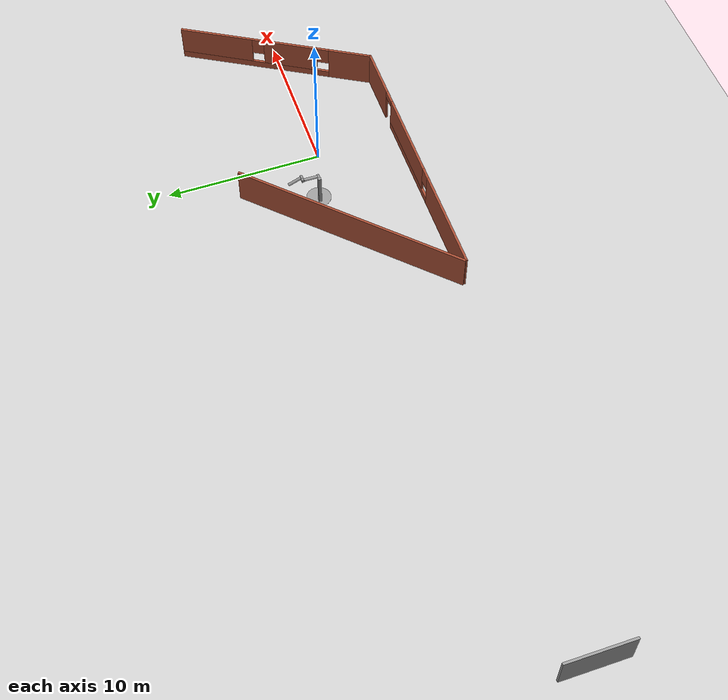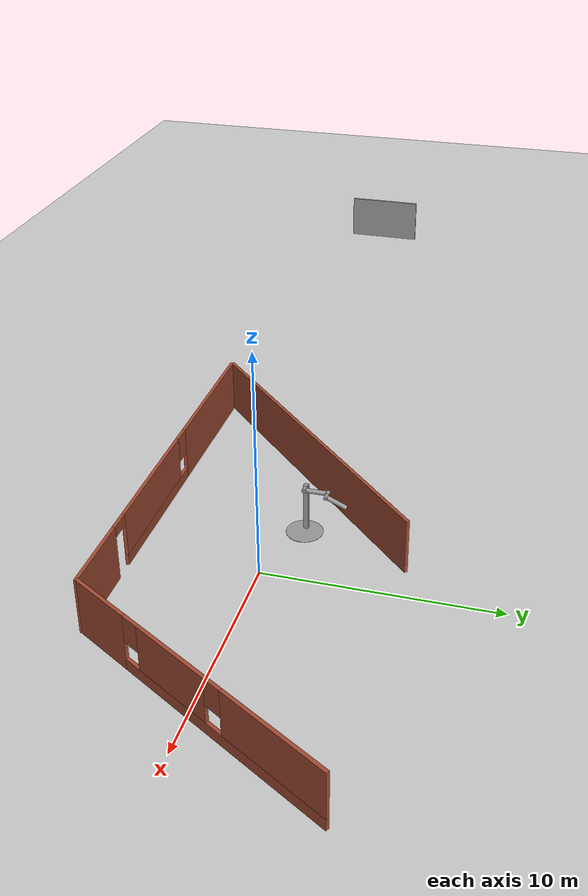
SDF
<sdf version="1.7">
 <world name="default">
  <light name="sun" type="directional">
   <pose>0 0 10 0 -0 0</pose>
   <diffuse>0.8 0.8 0.8 1</diffuse>
   <specular>0.2 0.2 0.2 1</specular>
   <attenuation>
    <range>1000</range>
    <constant>0.9</constant>
    <linear>0.01</linear>
    <quadratic>0.001</quadratic>
   </attenuation>
   <direction>-0.5 0.1 -0.9</direction>
   <spot><inner_angle>0</inner_angle><outer_angle>0</outer_angle><falloff>0</falloff></spot>
  </light>
  <model name="ground_plane">
   <static>1</static>
   <link name="link">
    <collision name="collision">
     <geometry><plane><normal>0 0 1</normal><size>100 100</size></plane></geometry>
     <surface>
      <contact><collide_bitmask>65535</collide_bitmask></contact>
      <friction><ode><mu>100</mu><mu2>50</mu2></ode></friction>
     </surface>
    </collision>
    <visual name="visual">
     <cast_shadows>0</cast_shadows>
     <geometry><plane><normal>0 0 1</normal><size>100 100</size></plane></geometry>
     <material>
      <script><uri>file://media/materials/scripts/gazebo.material</uri><name>Gazebo/Grey</name></script>
     </material>
    </visual>
   </link>
  </model>
  <gravity>0 0 -9.8</gravity>
  <magnetic_field>6e-06 2.3e-05 -4.2e-05</magnetic_field>
  <atmosphere type="adiabatic"/>
  <physics type="ode">
   <max_step_size>0.001</max_step_size>
   <real_time_factor>1</real_time_factor>
   <real_time_update_rate>1000</real_time_update_rate>
  </physics>
  <scene><ambient>0.4 0.4 0.4 1</ambient><background>0.7 0.7 0.7 1</background><shadows>1</shadows></scene>
  <audio><device>default</device></audio>
  <spherical_coordinates>
   <surface_model>EARTH_WGS84</surface_model>
   <latitude_deg>0</latitude_deg>
   <longitude_deg>0</longitude_deg>
   <elevation>0</elevation>
   <heading_deg>0</heading_deg>
  </spherical_coordinates>
  <model name="test_building">
   <pose>-12.8445 0.245049 0 0 -0 0</pose>
   <link name="Wall_0">
    <collision name="Wall_0_Collision">
     <geometry><box><size>4.25 0.15 2.5</size></box></geometry>
     <pose>0 0 1.25 0 -0 0</pose>
    </collision>
    <visual name="Wall_0_Visual">
     <pose>0 0 1.25 0 -0 0</pose>
     <geometry><box><size>4.25 0.15 2.5</size></box></geometry>
     <material>
      <script><uri>file://media/materials/scripts/gazebo.material</uri><name>Gazebo/Grey</name></script>
      <ambient>1 1 1 1</ambient>
     </material>
     <meta><layer>0</layer></meta>
    </visual>
    <pose>-24.438 -3.11712 0 0 -0 1.5708</pose>
   </link>
   <link name="Wall_2">
    <pose>9.18557 -5.56421 0 0 -0 -0.003068</pose>
    <visual name="Wall_2_Visual_0">
     <pose>-5.53355 0 1.25 0 -0 0</pose>
     <geometry><box><size>6.6829 0.15 2.5</size></box></geometry>
     <material>
      <script><uri>file://media/materials/scripts/gazebo.material</uri><name>Gazebo/Bricks</name></script>
      <ambient>1 1 1 1</ambient>
     </material>
     <meta><layer>0</layer></meta>
    </visual>
    <collision name="Wall_2_Collision_0">
     <geometry><box><size>6.6829 0.15 2.5</size></box></geometry>
     <pose>-5.53355 0 1.25 0 -0 0</pose>
    </collision>
    <visual name="Wall_2_Visual_1">
     <pose>7.15496 0 1.25 0 -0 0</pose>
     <geometry><box><size>3.44008 0.15 2.5</size></box></geometry>
     <material>
      <script><uri>file://media/materials/scripts/gazebo.material</uri><name>Gazebo/Bricks</name></script>
      <ambient>1 1 1 1</ambient>
     </material>
     <meta><layer>0</layer></meta>
    </visual>
    <collision name="Wall_2_Collision_1">
     <geometry><box><size>3.44008 0.15 2.5</size></box></geometry>
     <pose>7.15496 0 1.25 0 -0 0</pose>
    </collision>
    <visual name="Wall_2_Visual_2">
     <pose>1.17141 0 0.25 0 -0 0</pose>
     <geometry><box><size>6.72702 0.15 0.5</size></box></geometry>
     <material>
      <script><uri>file://media/materials/scripts/gazebo.material</uri><name>Gazebo/Bricks</name></script>
      <ambient>1 1 1 1</ambient>
     </material>
     <meta><layer>0</layer></meta>
    </visual>
    <collision name="Wall_2_Collision_2">
     <geometry><box><size>6.72702 0.15 0.5</size></box></geometry>
     <pose>1.17141 0 0.25 0 -0 0</pose>
    </collision>
    <visual name="Wall_2_Visual_3">
     <pose>1.57141 0 1.5 0 -0 0</pose>
     <geometry><box><size>5.92702 0.15 2</size></box></geometry>
     <material>
      <script><uri>file://media/materials/scripts/gazebo.material</uri><name>Gazebo/Bricks</name></script>
      <ambient>1 1 1 1</ambient>
     </material>
     <meta><layer>0</layer></meta>
    </visual>
    <collision name="Wall_2_Collision_3">
     <geometry><box><size>5.92702 0.15 2</size></box></geometry>
     <pose>1.57141 0 1.5 0 -0 0</pose>
    </collision>
    <visual name="Wall_2_Visual_4">
     <pose>-1.79211 0 1.9 0 -0 0</pose>
     <geometry><box><size>0.8 0.15 1.2</size></box></geometry>
     <material>
      <script><uri>file://media/materials/scripts/gazebo.material</uri><name>Gazebo/Bricks</name></script>
      <ambient>1 1 1 1</ambient>
     </material>
     <meta><layer>0</layer></meta>
    </visual>
    <collision name="Wall_2_Collision_4">
     <geometry><box><size>0.8 0.15 1.2</size></box></geometry>
     <pose>-1.79211 0 1.9 0 -0 0</pose>
    </collision>
    <visual name="Wall_2_Visual_5">
     <pose>4.98492 0 2.25 0 -0 0</pose>
     <geometry><box><size>0.9 0.15 0.5</size></box></geometry>
     <material>
      <script><uri>file://media/materials/scripts/gazebo.material</uri><name>Gazebo/Bricks</name></script>
      <ambient>1 1 1 1</ambient>
     </material>
     <meta><layer>0</layer></meta>
    </visual>
    <collision name="Wall_2_Collision_5">
     <geometry><box><size>0.9 0.15 0.5</size></box></geometry>
     <pose>4.98492 0 2.25 0 -0 0</pose>
    </collision>
   </link>
   <link name="Wall_3">
    <pose>21.1981 0 0 0 -0 1.0472</pose>
    <visual name="Wall_3_Visual_0">
     <pose>-5.05556 0 1.25 0 -0 0</pose>
     <geometry><box><size>2.88887 0.15 2.5</size></box></geometry>
     <material>
      <script><uri>file://media/materials/scripts/gazebo.material</uri><name>Gazebo/Bricks</name></script>
      <ambient>1 1 1 1</ambient>
     </material>
     <meta><layer>0</layer></meta>
    </visual>
    <collision name="Wall_3_Collision_0">
     <geometry><box><size>2.88887 0.15 2.5</size></box></geometry>
     <pose>-5.05556 0 1.25 0 -0 0</pose>
    </collision>
    <visual name="Wall_3_Visual_1">
     <pose>1.44443 0 0.25 0 -0 0</pose>
     <geometry><box><size>10.1111 0.15 0.5</size></box></geometry>
     <material>
      <script><uri>file://media/materials/scripts/gazebo.material</uri><name>Gazebo/Bricks</name></script>
      <ambient>1 1 1 1</ambient>
     </material>
     <meta><layer>0</layer></meta>
    </visual>
    <collision name="Wall_3_Collision_1">
     <geometry><box><size>10.1111 0.15 0.5</size></box></geometry>
     <pose>1.44443 0 0.25 0 -0 0</pose>
    </collision>
    <visual name="Wall_3_Visual_2">
     <pose>-0.999951 0 1.5 0 -0 0</pose>
     <geometry><box><size>3.62236 0.15 2</size></box></geometry>
     <material>
      <script><uri>file://media/materials/scripts/gazebo.material</uri><name>Gazebo/Bricks</name></script>
      <ambient>1 1 1 1</ambient>
     </material>
     <meta><layer>0</layer></meta>
    </visual>
    <collision name="Wall_3_Collision_2">
     <geometry><box><size>3.62236 0.15 2</size></box></geometry>
     <pose>-0.999951 0 1.5 0 -0 0</pose>
    </collision>
    <visual name="Wall_3_Visual_3">
     <pose>4.05561 0 1.5 0 -0 0</pose>
     <geometry><box><size>4.88877 0.15 2</size></box></geometry>
     <material>
      <script><uri>file://media/materials/scripts/gazebo.material</uri><name>Gazebo/Bricks</name></script>
      <ambient>1 1 1 1</ambient>
     </material>
     <meta><layer>0</layer></meta>
    </visual>
    <collision name="Wall_3_Collision_3">
     <geometry><box><size>4.88877 0.15 2</size></box></geometry>
     <pose>4.05561 0 1.5 0 -0 0</pose>
    </collision>
    <visual name="Wall_3_Visual_4">
     <pose>-3.21113 0 1.9 0 -0 0</pose>
     <geometry><box><size>0.8 0.15 1.2</size></box></geometry>
     <material>
      <script><uri>file://media/materials/scripts/gazebo.material</uri><name>Gazebo/Bricks</name></script>
      <ambient>1 1 1 1</ambient>
     </material>
     <meta><layer>0</layer></meta>
    </visual>
    <collision name="Wall_3_Collision_4">
     <geometry><box><size>0.8 0.15 1.2</size></box></geometry>
     <pose>-3.21113 0 1.9 0 -0 0</pose>
    </collision>
    <visual name="Wall_3_Visual_5">
     <pose>1.21123 0 1.9 0 -0 0</pose>
     <geometry><box><size>0.8 0.15 1.2</size></box></geometry>
     <material>
      <script><uri>file://media/materials/scripts/gazebo.material</uri><name>Gazebo/Bricks</name></script>
      <ambient>1 1 1 1</ambient>
     </material>
     <meta><layer>0</layer></meta>
    </visual>
    <collision name="Wall_3_Collision_5">
     <geometry><box><size>0.8 0.15 1.2</size></box></geometry>
     <pose>1.21123 0 1.9 0 -0 0</pose>
    </collision>
   </link>
   <link name="Wall_5">
    <collision name="Wall_5_Collision">
     <geometry><box><size>15.5 0.15 2.5</size></box></geometry>
     <pose>0 0 1.25 0 -0 0</pose>
    </collision>
    <visual name="Wall_5_Visual">
     <pose>0 0 1.25 0 -0 0</pose>
     <geometry><box><size>15.5 0.15 2.5</size></box></geometry>
     <material>
      <script><uri>file://media/materials/scripts/gazebo.material</uri><name>Gazebo/Bricks</name></script>
      <ambient>1 1 1 1</ambient>
     </material>
     <meta><layer>0</layer></meta>
    </visual>
    <pose>5.79331 -0.009378 0 0 -0 0.785398</pose>
   </link>
   <static>1</static>
  </model>
  <model name="double_pendulum_with_base">
   <link name="base">
    <inertial>
     <mass>100</mass>
     <inertia><ixx>1</ixx><ixy>0</ixy><ixz>0</ixz><iyy>1</iyy><iyz>0</iyz><izz>1</izz></inertia>
    </inertial>
    <visual name="vis_plate_on_ground">
     <pose>0 0 0.01 0 -0 0</pose>
     <geometry><cylinder><radius>0.8</radius><length>0.02</length></cylinder></geometry>
     <material>
      <script><uri>file://media/materials/scripts/gazebo.material</uri><name>Gazebo/Grey</name></script>
     </material>
    </visual>
    <visual name="vis_pole">
     <pose>-0.275 0 1.1 0 -0 0</pose>
     <geometry><box><size>0.2 0.2 2.2</size></box></geometry>
     <material>
      <script><uri>file://media/materials/scripts/gazebo.material</uri><name>Gazebo/Grey</name></script>
     </material>
    </visual>
    <collision name="col_plate_on_ground">
     <pose>0 0 0.01 0 -0 0</pose>
     <geometry><cylinder><radius>0.8</radius><length>0.02</length></cylinder></geometry>
    </collision>
    <collision name="col_pole">
     <pose>-0.275 0 1.1 0 -0 0</pose>
     <geometry><box><size>0.2 0.2 2.2</size></box></geometry>
    </collision>
   </link>
   <link name="upper_link">
    <pose>0 0 2.1 -1.5708 0 0</pose>
    <inertial>
     <pose>0 0 0.5 0 -0 0</pose>
     <inertia><ixx>1</ixx><ixy>0</ixy><ixz>0</ixz><iyy>1</iyy><iyz>0</iyz><izz>1</izz></inertia>
     <mass>1</mass>
    </inertial>
    <visual name="vis_upper_joint">
     <pose>-0.05 0 0 3.14159 1.57079 3.14159</pose>
     <geometry><cylinder><radius>0.1</radius><length>0.3</length></cylinder></geometry>
     <material>
      <script><uri>file://media/materials/scripts/gazebo.material</uri><name>Gazebo/Grey</name></script>
     </material>
    </visual>
    <visual name="vis_lower_joint">
     <pose>0 0 1 3.14159 1.57079 3.14159</pose>
     <geometry><cylinder><radius>0.1</radius><length>0.2</length></cylinder></geometry>
     <material>
      <script><uri>file://media/materials/scripts/gazebo.material</uri><name>Gazebo/Grey</name></script>
     </material>
    </visual>
    <visual name="vis_cylinder">
     <pose>0 0 0.5 0 -0 0</pose>
     <geometry><cylinder><radius>0.1</radius><length>0.9</length></cylinder></geometry>
     <material>
      <script><uri>file://media/materials/scripts/gazebo.material</uri><name>Gazebo/Grey</name></script>
     </material>
    </visual>
    <collision name="col_upper_joint">
     <pose>-0.05 0 0 3.14159 1.57079 3.14159</pose>
     <geometry><cylinder><radius>0.1</radius><length>0.3</length></cylinder></geometry>
    </collision>
    <collision name="col_lower_joint">
     <pose>0 0 1 3.14159 1.57079 3.14159</pose>
     <geometry><cylinder><radius>0.1</radius><length>0.2</length></cylinder></geometry>
    </collision>
    <collision name="col_cylinder">
     <pose>0 0 0.5 0 -0 0</pose>
     <geometry><cylinder><radius>0.1</radius><length>0.9</length></cylinder></geometry>
    </collision>
   </link>
   <link name="lower_link">
    <pose>0.25 1 2.1 -2 0 0</pose>
    <inertial>
     <pose>0 0 0.5 0 -0 0</pose>
     <inertia><ixx>1</ixx><ixy>0</ixy><ixz>0</ixz><iyy>1</iyy><iyz>0</iyz><izz>1</izz></inertia>
     <mass>1</mass>
    </inertial>
    <visual name="vis_lower_joint">
     <pose>0 0 0 3.14159 1.57079 3.14159</pose>
     <geometry><cylinder><radius>0.08</radius><length>0.3</length></cylinder></geometry>
     <material>
      <script><uri>file://media/materials/scripts/gazebo.material</uri><name>Gazebo/Grey</name></script>
     </material>
    </visual>
    <visual name="vis_cylinder">
     <pose>0 0 0.5 0 -0 0</pose>
     <geometry><cylinder><radius>0.1</radius><length>0.9</length></cylinder></geometry>
     <material>
      <script><uri>file://media/materials/scripts/gazebo.material</uri><name>Gazebo/Grey</name></script>
     </material>
    </visual>
    <collision name="col_lower_joint">
     <pose>0 0 0 3.14159 1.57079 3.14159</pose>
     <geometry><cylinder><radius>0.08</radius><length>0.3</length></cylinder></geometry>
    </collision>
    <collision name="col_cylinder">
     <pose>0 0 0.5 0 -0 0</pose>
     <geometry><cylinder><radius>0.1</radius><length>0.9</length></cylinder></geometry>
    </collision>
   </link>
   <joint name="upper_joint" type="revolute">
    <parent>base</parent>
    <child>upper_link</child>
    <axis>
     <xyz>1 0 0</xyz>
     <limit><lower>-1e+16</lower><upper>1e+16</upper></limit>
     <dynamics><spring_reference>0</spring_reference><spring_stiffness>0</spring_stiffness></dynamics>
    </axis>
   </joint>
   <joint name="lower_joint" type="revolute">
    <parent>upper_link</parent>
    <child>lower_link</child>
    <axis>
     <xyz>1 0 0</xyz>
     <limit><lower>-1e+16</lower><upper>1e+16</upper></limit>
     <dynamics><spring_reference>0</spring_reference><spring_stiffness>0</spring_stiffness></dynamics>
    </axis>
   </joint>
   <pose>-3.20156 1.02088 -0 0 0 -0.00176</pose>
  </model>
 </world>
</sdf>
